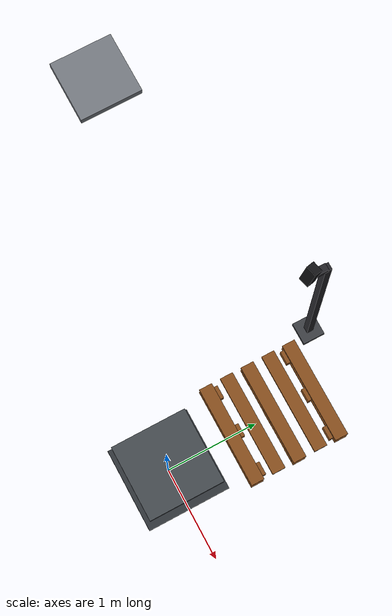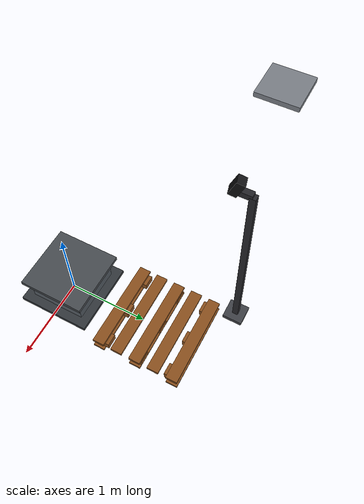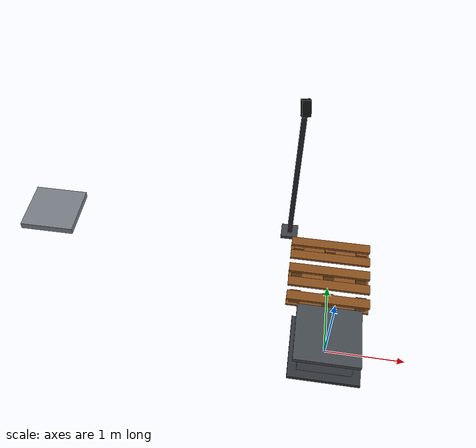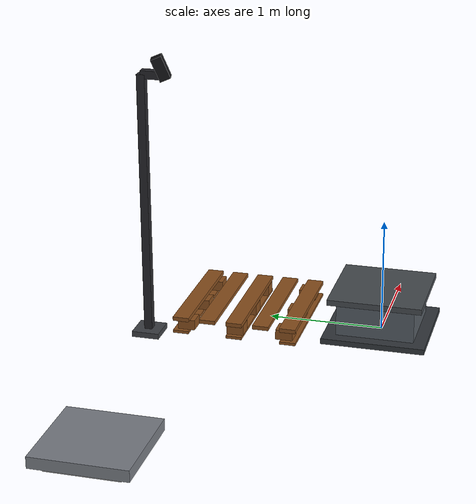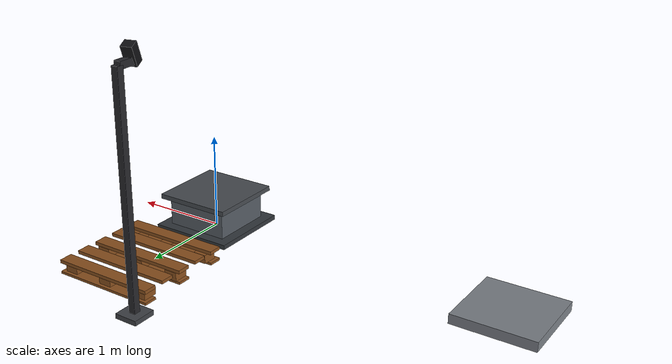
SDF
<sdf version="1.8">
 <world name="ahead_workcell_v4_2_physical_scale">
  <model name="inline_scale">
   <static>true</static>
   <link name="scale_link">
    <visual name="weighing_frame">
     <pose>-3.80 1.20 0.755 0 0 0</pose>
     <geometry><box><size>0.70 0.70 0.085</size></box></geometry>
     <material><ambient>0.25 0.26 0.28 1</ambient><diffuse>0.48 0.50 0.53 1</diffuse></material>
    </visual>
    <visual name="loadcell_base">
     <pose>-3.80 1.20 0.685 0 0 0</pose>
     <geometry><box><size>0.56 0.54 0.045</size></box></geometry>
    </visual>
   </link>
  </model>
  <model name="hdr50_pedestal">
   <static>true</static>
   <link name="pedestal_link">
    <collision name="base_plate_collision">
     <pose>0 0 0.025 0 0 0</pose>
     <geometry><box><size>0.90 0.90 0.05</size></box></geometry>
    </collision>
    <visual name="base_plate_visual">
     <pose>0 0 0.025 0 0 0</pose>
     <geometry><box><size>0.90 0.90 0.05</size></box></geometry>
     <material><ambient>0.10 0.11 0.12 1</ambient><diffuse>0.20 0.22 0.24 1</diffuse></material>
    </visual>
    <collision name="column_collision">
     <pose>0 0 0.205 0 0 0</pose>
     <geometry><box><size>0.68 0.68 0.31</size></box></geometry>
    </collision>
    <visual name="column_visual">
     <pose>0 0 0.205 0 0 0</pose>
     <geometry><box><size>0.68 0.68 0.31</size></box></geometry>
     <material><ambient>0.18 0.20 0.22 1</ambient><diffuse>0.34 0.37 0.40 1</diffuse></material>
    </visual>
    <collision name="top_plate_collision">
     <pose>0 0 0.375 0 0 0</pose>
     <geometry><box><size>0.82 0.82 0.05</size></box></geometry>
    </collision>
    <visual name="top_plate_visual">
     <pose>0 0 0.375 0 0 0</pose>
     <geometry><box><size>0.82 0.82 0.05</size></box></geometry>
     <material><ambient>0.12 0.13 0.14 1</ambient><diffuse>0.28 0.30 0.32 1</diffuse></material>
    </visual>
   </link>
  </model>
  <model name="pallet_main">
   <static>true</static>
   <pose>0 1.20 0 0 0 0</pose>
   <link name="pallet_link">
    <collision name="bottom_runner_0_collision">
     <pose>0 -0.48 0.0125 0 0 0</pose>
     <geometry><box><size>1.1 0.14 0.025</size></box></geometry>
    </collision>
    <visual name="bottom_runner_0_visual">
     <pose>0 -0.48 0.0125 0 0 0</pose>
     <geometry><box><size>1.1 0.14 0.025</size></box></geometry>
     <material><ambient>0.34 0.20 0.08 1</ambient><diffuse>0.55 0.32 0.12 1</diffuse></material>
    </visual>
    <collision name="bottom_runner_1_collision">
     <pose>0 0.0 0.0125 0 0 0</pose>
     <geometry><box><size>1.1 0.14 0.025</size></box></geometry>
    </collision>
    <visual name="bottom_runner_1_visual">
     <pose>0 0.0 0.0125 0 0 0</pose>
     <geometry><box><size>1.1 0.14 0.025</size></box></geometry>
     <material><ambient>0.34 0.20 0.08 1</ambient><diffuse>0.55 0.32 0.12 1</diffuse></material>
    </visual>
    <collision name="bottom_runner_2_collision">
     <pose>0 0.48 0.0125 0 0 0</pose>
     <geometry><box><size>1.1 0.14 0.025</size></box></geometry>
    </collision>
    <visual name="bottom_runner_2_visual">
     <pose>0 0.48 0.0125 0 0 0</pose>
     <geometry><box><size>1.1 0.14 0.025</size></box></geometry>
     <material><ambient>0.34 0.20 0.08 1</ambient><diffuse>0.55 0.32 0.12 1</diffuse></material>
    </visual>
    <collision name="support_block_0_0_collision">
     <pose>-0.44 -0.44 0.07 0 0 0</pose>
     <geometry><box><size>0.14 0.15 0.09</size></box></geometry>
    </collision>
    <visual name="support_block_0_0_visual">
     <pose>-0.44 -0.44 0.07 0 0 0</pose>
     <geometry><box><size>0.14 0.15 0.09</size></box></geometry>
     <material><ambient>0.34 0.20 0.08 1</ambient><diffuse>0.55 0.32 0.12 1</diffuse></material>
    </visual>
    <collision name="support_block_0_1_collision">
     <pose>-0.44 0.0 0.07 0 0 0</pose>
     <geometry><box><size>0.14 0.15 0.09</size></box></geometry>
    </collision>
    <visual name="support_block_0_1_visual">
     <pose>-0.44 0.0 0.07 0 0 0</pose>
     <geometry><box><size>0.14 0.15 0.09</size></box></geometry>
     <material><ambient>0.34 0.20 0.08 1</ambient><diffuse>0.55 0.32 0.12 1</diffuse></material>
    </visual>
    <collision name="support_block_0_2_collision">
     <pose>-0.44 0.44 0.07 0 0 0</pose>
     <geometry><box><size>0.14 0.15 0.09</size></box></geometry>
    </collision>
    <visual name="support_block_0_2_visual">
     <pose>-0.44 0.44 0.07 0 0 0</pose>
     <geometry><box><size>0.14 0.15 0.09</size></box></geometry>
     <material><ambient>0.34 0.20 0.08 1</ambient><diffuse>0.55 0.32 0.12 1</diffuse></material>
    </visual>
    <collision name="support_block_1_0_collision">
     <pose>0.0 -0.44 0.07 0 0 0</pose>
     <geometry><box><size>0.14 0.15 0.09</size></box></geometry>
    </collision>
    <visual name="support_block_1_0_visual">
     <pose>0.0 -0.44 0.07 0 0 0</pose>
     <geometry><box><size>0.14 0.15 0.09</size></box></geometry>
     <material><ambient>0.34 0.20 0.08 1</ambient><diffuse>0.55 0.32 0.12 1</diffuse></material>
    </visual>
    <collision name="support_block_1_1_collision">
     <pose>0.0 0.0 0.07 0 0 0</pose>
     <geometry><box><size>0.14 0.15 0.09</size></box></geometry>
    </collision>
    <visual name="support_block_1_1_visual">
     <pose>0.0 0.0 0.07 0 0 0</pose>
     <geometry><box><size>0.14 0.15 0.09</size></box></geometry>
     <material><ambient>0.34 0.20 0.08 1</ambient><diffuse>0.55 0.32 0.12 1</diffuse></material>
    </visual>
    <collision name="support_block_1_2_collision">
     <pose>0.0 0.44 0.07 0 0 0</pose>
     <geometry><box><size>0.14 0.15 0.09</size></box></geometry>
    </collision>
    <visual name="support_block_1_2_visual">
     <pose>0.0 0.44 0.07 0 0 0</pose>
     <geometry><box><size>0.14 0.15 0.09</size></box></geometry>
     <material><ambient>0.34 0.20 0.08 1</ambient><diffuse>0.55 0.32 0.12 1</diffuse></material>
    </visual>
    <collision name="support_block_2_0_collision">
     <pose>0.44 -0.44 0.07 0 0 0</pose>
     <geometry><box><size>0.14 0.15 0.09</size></box></geometry>
    </collision>
    <visual name="support_block_2_0_visual">
     <pose>0.44 -0.44 0.07 0 0 0</pose>
     <geometry><box><size>0.14 0.15 0.09</size></box></geometry>
     <material><ambient>0.34 0.20 0.08 1</ambient><diffuse>0.55 0.32 0.12 1</diffuse></material>
    </visual>
    <collision name="support_block_2_1_collision">
     <pose>0.44 0.0 0.07 0 0 0</pose>
     <geometry><box><size>0.14 0.15 0.09</size></box></geometry>
    </collision>
    <visual name="support_block_2_1_visual">
     <pose>0.44 0.0 0.07 0 0 0</pose>
     <geometry><box><size>0.14 0.15 0.09</size></box></geometry>
     <material><ambient>0.34 0.20 0.08 1</ambient><diffuse>0.55 0.32 0.12 1</diffuse></material>
    </visual>
    <collision name="support_block_2_2_collision">
     <pose>0.44 0.44 0.07 0 0 0</pose>
     <geometry><box><size>0.14 0.15 0.09</size></box></geometry>
    </collision>
    <visual name="support_block_2_2_visual">
     <pose>0.44 0.44 0.07 0 0 0</pose>
     <geometry><box><size>0.14 0.15 0.09</size></box></geometry>
     <material><ambient>0.34 0.20 0.08 1</ambient><diffuse>0.55 0.32 0.12 1</diffuse></material>
    </visual>
    <collision name="top_board_0_collision">
     <pose>0 -0.47850 0.1325 0 0 0</pose>
     <geometry><box><size>1.1 0.143 0.035</size></box></geometry>
    </collision>
    <visual name="top_board_0_visual">
     <pose>0 -0.47850 0.1325 0 0 0</pose>
     <geometry><box><size>1.1 0.143 0.035</size></box></geometry>
     <material><ambient>0.34 0.20 0.08 1</ambient><diffuse>0.55 0.32 0.12 1</diffuse></material>
    </visual>
    <collision name="top_board_1_collision">
     <pose>0 -0.23925 0.1325 0 0 0</pose>
     <geometry><box><size>1.1 0.143 0.035</size></box></geometry>
    </collision>
    <visual name="top_board_1_visual">
     <pose>0 -0.23925 0.1325 0 0 0</pose>
     <geometry><box><size>1.1 0.143 0.035</size></box></geometry>
     <material><ambient>0.34 0.20 0.08 1</ambient><diffuse>0.55 0.32 0.12 1</diffuse></material>
    </visual>
    <collision name="top_board_2_collision">
     <pose>0 0.00000 0.1325 0 0 0</pose>
     <geometry><box><size>1.1 0.143 0.035</size></box></geometry>
    </collision>
    <visual name="top_board_2_visual">
     <pose>0 0.00000 0.1325 0 0 0</pose>
     <geometry><box><size>1.1 0.143 0.035</size></box></geometry>
     <material><ambient>0.34 0.20 0.08 1</ambient><diffuse>0.55 0.32 0.12 1</diffuse></material>
    </visual>
    <collision name="top_board_3_collision">
     <pose>0 0.23925 0.1325 0 0 0</pose>
     <geometry><box><size>1.1 0.143 0.035</size></box></geometry>
    </collision>
    <visual name="top_board_3_visual">
     <pose>0 0.23925 0.1325 0 0 0</pose>
     <geometry><box><size>1.1 0.143 0.035</size></box></geometry>
     <material><ambient>0.34 0.20 0.08 1</ambient><diffuse>0.55 0.32 0.12 1</diffuse></material>
    </visual>
    <collision name="top_board_4_collision">
     <pose>0 0.47850 0.1325 0 0 0</pose>
     <geometry><box><size>1.1 0.143 0.035</size></box></geometry>
    </collision>
    <visual name="top_board_4_visual">
     <pose>0 0.47850 0.1325 0 0 0</pose>
     <geometry><box><size>1.1 0.143 0.035</size></box></geometry>
     <material><ambient>0.34 0.20 0.08 1</ambient><diffuse>0.55 0.32 0.12 1</diffuse></material>
    </visual>
   </link>
  </model>
  <model name="camera_1_cctv_base">
   <static>true</static>
   <link name="camera_1_link">
    <collision name="pole_base_collision">
     <pose>-0.6 1.95 0.025 0 0 0</pose>
     <geometry><box><size>0.24 0.24 0.05</size></box></geometry>
    </collision>
    <visual name="pole_base">
     <pose>-0.6 1.95 0.025 0 0 0</pose>
     <geometry><box><size>0.24 0.24 0.05</size></box></geometry>
     <material><ambient>0.12 0.12 0.13 1</ambient><diffuse>0.25 0.26 0.28 1</diffuse></material>
    </visual>
    <collision name="camera_pole_collision">
     <pose>-0.6 1.95 1.17 0 0 0</pose>
     <geometry><box><size>0.07 0.07 2.34</size></box></geometry>
    </collision>
    <visual name="camera_pole">
     <pose>-0.6 1.95 1.17 0 0 0</pose>
     <geometry><box><size>0.07 0.07 2.34</size></box></geometry>
     <material><ambient>0.07 0.07 0.08 1</ambient><diffuse>0.15 0.15 0.17 1</diffuse></material>
    </visual>
    <visual name="camera_bracket">
     <pose>-0.60 1.865 2.34 0 0 0</pose>
     <geometry><box><size>0.07 0.17 0.07</size></box></geometry>
     <material><ambient>0.07 0.07 0.08 1</ambient><diffuse>0.15 0.15 0.17 1</diffuse></material>
    </visual>
    <visual name="camera_housing">
     <pose>-0.6 1.78 2.4 0 1.178996 -1.317721</pose>
     <geometry><box><size>0.20 0.11 0.095</size></box></geometry>
     <material><ambient>0.025 0.025 0.03 1</ambient><diffuse>0.07 0.07 0.08 1</diffuse></material>
    </visual>
    <sensor name="cctv_camera_1" type="camera">
     <pose>-0.6 1.78 2.4 0 1.178996 -1.317721</pose>
     <always_on>true</always_on>
     <update_rate>15</update_rate>
     <topic>/pac/top_camera/image</topic>
     <camera>
      <horizontal_fov>1.40</horizontal_fov>
      <image><width>1280</width><height>720</height><format>R8G8B8</format></image>
      <clip><near>0.10</near><far>8.0</far></clip>
     </camera>
    </sensor>
   </link>
  </model>
 </world>
</sdf>
